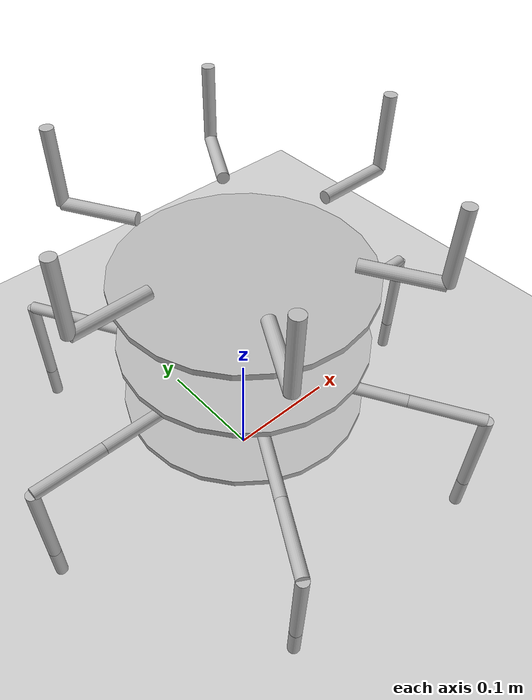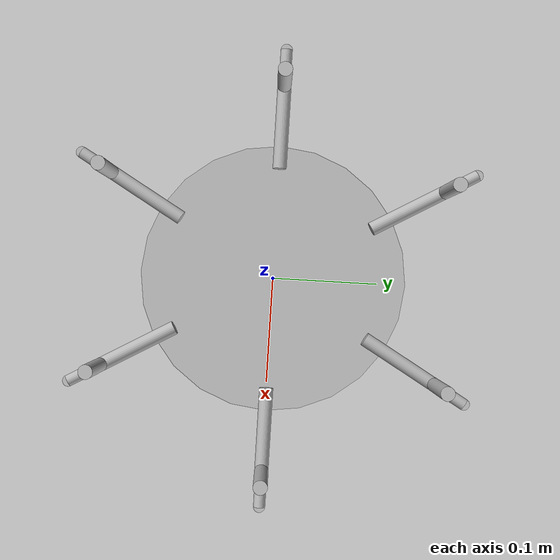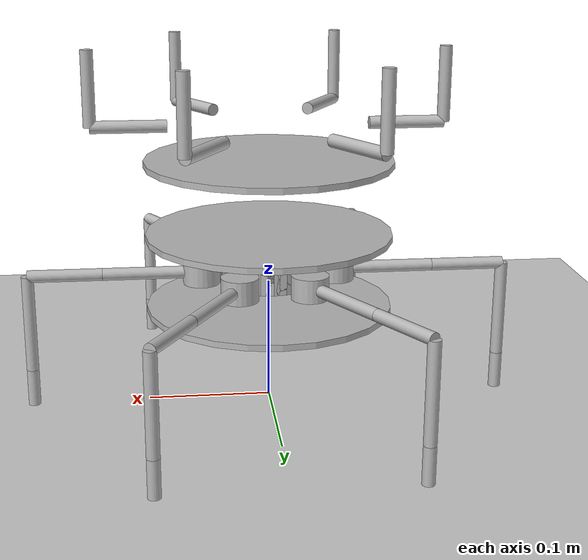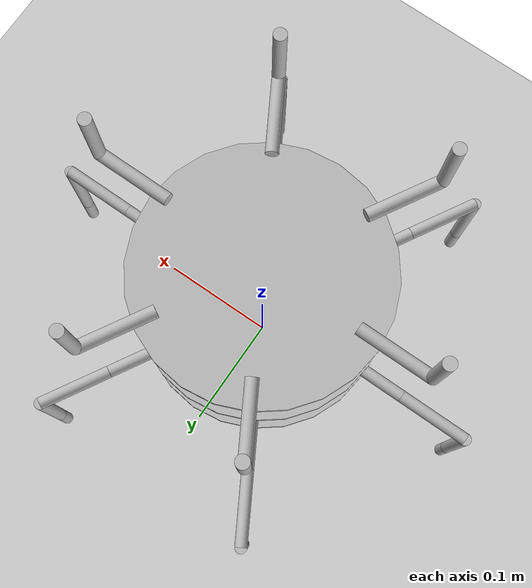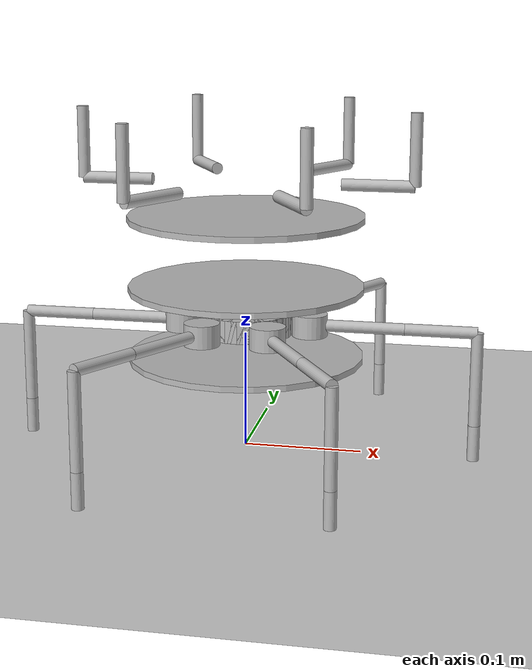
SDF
<sdf version="1.6">
 <world name="default">
  <light name="sun" type="directional">
   <pose>0 0 10 0 -0 0</pose>
   <diffuse>0.8 0.8 0.8 1</diffuse>
   <specular>0.2 0.2 0.2 1</specular>
   <attenuation>
    <range>1000</range>
    <constant>0.9</constant>
    <linear>0.01</linear>
    <quadratic>0.001</quadratic>
   </attenuation>
   <direction>-0.5 0.1 -0.9</direction>
  </light>
  <model name="ground_plane">
   <static>1</static>
   <link name="link">
    <collision name="collision">
     <geometry><plane><normal>0 0 1</normal><size>100 100</size></plane></geometry>
     <surface>
      <contact><collide_bitmask>65535</collide_bitmask></contact>
      <friction><ode><mu>100</mu><mu2>50</mu2></ode></friction>
     </surface>
    </collision>
    <visual name="visual">
     <cast_shadows>0</cast_shadows>
     <geometry><plane><normal>0 0 1</normal><size>100 100</size></plane></geometry>
     <material>
      <script><uri>file://media/materials/scripts/gazebo.material</uri><name>Gazebo/Grey</name></script>
     </material>
    </visual>
   </link>
  </model>
  <gravity>0 0 -9.8</gravity>
  <magnetic_field>6e-06 2.3e-05 -4.2e-05</magnetic_field>
  <atmosphere type="adiabatic"/>
  <physics name="default_physics" default="0" type="ode">
   <max_step_size>0.001</max_step_size>
   <real_time_factor>1</real_time_factor>
   <real_time_update_rate>1000</real_time_update_rate>
  </physics>
  <scene><ambient>0.4 0.4 0.4 1</ambient><background>0.7 0.7 0.7 1</background><shadows>1</shadows></scene>
  <audio><device>default</device></audio>
  <spherical_coordinates>
   <surface_model>EARTH_WGS84</surface_model>
   <latitude_deg>0</latitude_deg>
   <longitude_deg>0</longitude_deg>
   <elevation>0</elevation>
   <heading_deg>0</heading_deg>
  </spherical_coordinates>
  <model name="shell_robot_model">
   <link name="map">
    <inertial>
     <pose>-0 -0 0.121429 0 -0 0</pose>
     <mass>12.6</mass>
     <inertia>
      <ixx>0.208469</ixx>
      <ixy>0.0299993</ixy>
      <ixz>0.0299995</ixz>
      <iyy>0.208467</iyy>
      <iyz>0.0299981</iyz>
      <izz>0.200814</izz>
     </inertia>
    </inertial>
    <collision name="map_fixed_joint_lump__base_link_collision">
     <pose>0 0 0.14 0 -0 0</pose>
     <geometry><cylinder><length>0.005</length><radius>0.1</radius></cylinder></geometry>
    </collision>
    <collision name="map_fixed_joint_lump__bottom_chassis_collision_1">
     <pose>0 0 0.08 0 -0 0</pose>
     <geometry><cylinder><length>0.005</length><radius>0.1</radius></cylinder></geometry>
    </collision>
    <collision name="map_fixed_joint_lump__leg_B_1_1_collision_2">
     <pose>0.0275 0.047631 0.11 0 -0 1.04719</pose>
     <geometry><cylinder><length>0.0038</length><radius>0.003</radius></cylinder></geometry>
    </collision>
    <collision name="map_fixed_joint_lump__leg_B_2_1_collision_3">
     <pose>-0.027499 0.047632 0.11 0 -0 2.09438</pose>
     <geometry><cylinder><length>0.0038</length><radius>0.003</radius></cylinder></geometry>
    </collision>
    <collision name="map_fixed_joint_lump__leg_B_3_1_collision_4">
     <pose>-0.055 1e-06 0.11 0 -0 3.14157</pose>
     <geometry><cylinder><length>0.0038</length><radius>0.003</radius></cylinder></geometry>
    </collision>
    <collision name="map_fixed_joint_lump__leg_B_4_1_collision_5">
     <pose>-0.027501 -0.047631 0.11 0 -0 -2.09443</pose>
     <geometry><cylinder><length>0.0038</length><radius>0.003</radius></cylinder></geometry>
    </collision>
    <collision name="map_fixed_joint_lump__leg_B_5_1_collision_6">
     <pose>0.027498 -0.047632 0.11 0 -0 -1.04724</pose>
     <geometry><cylinder><length>0.0038</length><radius>0.003</radius></cylinder></geometry>
    </collision>
    <collision name="map_fixed_joint_lump__leg_B_6_1_collision_7">
     <pose>0.055 -2e-06 0.11 0 -0 -4.5e-05</pose>
     <geometry><cylinder><length>0.0038</length><radius>0.003</radius></cylinder></geometry>
    </collision>
    <collision name="map_fixed_joint_lump__upper_chassis_collision_8">
     <pose>0 0 0.2 0 -0 0</pose>
     <geometry><cylinder><length>0.005</length><radius>0.1</radius></cylinder></geometry>
    </collision>
    <visual name="map_fixed_joint_lump__base_link_visual">
     <pose>0 0 0.14 0 -0 0</pose>
     <geometry><cylinder><length>0.005</length><radius>0.1</radius></cylinder></geometry>
     <material><script><uri>__default__</uri><name>__default__</name></script></material>
    </visual>
    <visual name="map_fixed_joint_lump__bottom_chassis_visual_1">
     <pose>0 0 0.08 0 -0 0</pose>
     <geometry><cylinder><length>0.005</length><radius>0.1</radius></cylinder></geometry>
     <material><script><uri>__default__</uri><name>__default__</name></script></material>
    </visual>
    <visual name="map_fixed_joint_lump__folding_fan_link_1_visual_2">
     <pose>0 0 0.11 0 -0 1.04719</pose>
     <geometry><cylinder><length>0.019</length><radius>0.04</radius></cylinder></geometry>
     <material><script><uri>__default__</uri><name>__default__</name></script></material>
    </visual>
    <visual name="map_fixed_joint_lump__leg_B_1_1_visual_3">
     <pose>0.0275 0.047631 0.11 0 -0 1.04719</pose>
     <geometry><cylinder><length>0.019</length><radius>0.015</radius></cylinder></geometry>
     <material><script><uri>__default__</uri><name>__default__</name></script></material>
    </visual>
    <visual name="map_fixed_joint_lump__folding_fan_link_2_visual_4">
     <pose>0 0 0.11 0 -0 2.09438</pose>
     <geometry><cylinder><length>0.019</length><radius>0.04</radius></cylinder></geometry>
     <material><script><uri>__default__</uri><name>__default__</name></script></material>
    </visual>
    <visual name="map_fixed_joint_lump__leg_B_2_1_visual_5">
     <pose>-0.027499 0.047632 0.11 0 -0 2.09438</pose>
     <geometry><cylinder><length>0.019</length><radius>0.015</radius></cylinder></geometry>
     <material><script><uri>__default__</uri><name>__default__</name></script></material>
    </visual>
    <visual name="map_fixed_joint_lump__folding_fan_link_3_visual_6">
     <pose>0 0 0.11 0 -0 3.14157</pose>
     <geometry><cylinder><length>0.019</length><radius>0.04</radius></cylinder></geometry>
     <material><script><uri>__default__</uri><name>__default__</name></script></material>
    </visual>
    <visual name="map_fixed_joint_lump__leg_B_3_1_visual_7">
     <pose>-0.055 1e-06 0.11 0 -0 3.14157</pose>
     <geometry><cylinder><length>0.019</length><radius>0.015</radius></cylinder></geometry>
     <material><script><uri>__default__</uri><name>__default__</name></script></material>
    </visual>
    <visual name="map_fixed_joint_lump__folding_fan_link_4_visual_8">
     <pose>0 0 0.11 0 -0 -2.09443</pose>
     <geometry><cylinder><length>0.019</length><radius>0.04</radius></cylinder></geometry>
     <material><script><uri>__default__</uri><name>__default__</name></script></material>
    </visual>
    <visual name="map_fixed_joint_lump__leg_B_4_1_visual_9">
     <pose>-0.027501 -0.047631 0.11 0 -0 -2.09443</pose>
     <geometry><cylinder><length>0.019</length><radius>0.015</radius></cylinder></geometry>
     <material><script><uri>__default__</uri><name>__default__</name></script></material>
    </visual>
    <visual name="map_fixed_joint_lump__folding_fan_link_5_visual_10">
     <pose>0 0 0.11 0 -0 -1.04724</pose>
     <geometry><cylinder><length>0.019</length><radius>0.04</radius></cylinder></geometry>
     <material><script><uri>__default__</uri><name>__default__</name></script></material>
    </visual>
    <visual name="map_fixed_joint_lump__leg_B_5_1_visual_11">
     <pose>0.027498 -0.047632 0.11 0 -0 -1.04724</pose>
     <geometry><cylinder><length>0.019</length><radius>0.015</radius></cylinder></geometry>
     <material><script><uri>__default__</uri><name>__default__</name></script></material>
    </visual>
    <visual name="map_fixed_joint_lump__folding_fan_link_6_visual_12">
     <pose>0 0 0.11 0 -0 -4.5e-05</pose>
     <geometry><cylinder><length>0.019</length><radius>0.04</radius></cylinder></geometry>
     <material><script><uri>__default__</uri><name>__default__</name></script></material>
    </visual>
    <visual name="map_fixed_joint_lump__leg_B_6_1_visual_13">
     <pose>0.055 -2e-06 0.11 0 -0 -4.5e-05</pose>
     <geometry><cylinder><length>0.019</length><radius>0.015</radius></cylinder></geometry>
     <material><script><uri>__default__</uri><name>__default__</name></script></material>
    </visual>
    <visual name="map_fixed_joint_lump__upper_chassis_visual_14">
     <pose>0 0 0.2 0 -0 0</pose>
     <geometry><cylinder><length>0.005</length><radius>0.1</radius></cylinder></geometry>
     <material><script><uri>__default__</uri><name>__default__</name></script></material>
    </visual>
    <self_collide>1</self_collide>
   </link>
   <link name="leg_B_1_2">
    <pose>0.0275 0.047631 0.11 0 -0 1.04719</pose>
    <inertial>
     <pose>0.04 0 0 3.14159 1.57079 3.14159</pose>
     <mass>0.06</mass>
     <inertia>
      <ixx>0.0004</ixx>
      <ixy>0.01</ixy>
      <ixz>0.01</ixz>
      <iyy>0.01</iyy>
      <iyz>0.01</iyz>
      <izz>0.0004</izz>
     </inertia>
    </inertial>
    <collision name="leg_B_1_2_collision">
     <pose>0.04 0 0 3.14159 1.57079 3.14159</pose>
     <geometry><cylinder><length>0.024</length><radius>0.003</radius></cylinder></geometry>
    </collision>
    <visual name="leg_B_1_2_visual">
     <pose>0.04 0 0 3.14159 1.57079 3.14159</pose>
     <geometry><cylinder><length>0.08</length><radius>0.005</radius></cylinder></geometry>
     <material><script><uri>__default__</uri><name>__default__</name></script></material>
    </visual>
    <self_collide>1</self_collide>
   </link>
   <joint name="q_1_1_1" type="revolute">
    <child>leg_B_1_2</child>
    <parent>map</parent>
    <axis>
     <xyz>0 0 1</xyz>
     <limit><lower>0</lower><upper>3.14159</upper><effort>1.5</effort><velocity>0.04</velocity></limit>
     <dynamics>
      <damping>0.8</damping>
      <friction>0</friction>
      <spring_reference>0</spring_reference>
      <spring_stiffness>0</spring_stiffness>
     </dynamics>
     <use_parent_model_frame>1</use_parent_model_frame>
    </axis>
   </joint>
   <link name="leg_B_1_3">
    <pose>0.067501 0.116913 0.11 0 -0 1.04719</pose>
    <inertial>
     <pose>0.03 0 0 3.14159 1.57079 3.14159</pose>
     <mass>0.06</mass>
     <inertia>
      <ixx>0.0003</ixx>
      <ixy>0.01</ixy>
      <ixz>0.01</ixz>
      <iyy>0.01</iyy>
      <iyz>0.01</iyz>
      <izz>0.0003</izz>
     </inertia>
    </inertial>
    <collision name="leg_B_1_3_collision">
     <pose>0.03 0 0 3.14159 1.57079 3.14159</pose>
     <geometry><cylinder><length>0.036</length><radius>0.003</radius></cylinder></geometry>
    </collision>
    <visual name="leg_B_1_3_visual">
     <pose>0.03 0 0 3.14159 1.57079 3.14159</pose>
     <geometry><cylinder><length>0.06</length><radius>0.005</radius></cylinder></geometry>
     <material><script><uri>__default__</uri><name>__default__</name></script></material>
    </visual>
    <self_collide>1</self_collide>
   </link>
   <joint name="q_1_1_2" type="revolute">
    <child>leg_B_1_3</child>
    <parent>leg_B_1_2</parent>
    <axis>
     <xyz>0 0 1</xyz>
     <limit><lower>-1.57079</lower><upper>1.57079</upper><effort>1.5</effort><velocity>0.04</velocity></limit>
     <dynamics>
      <damping>0.7</damping>
      <friction>0</friction>
      <spring_reference>0</spring_reference>
      <spring_stiffness>0</spring_stiffness>
     </dynamics>
     <use_parent_model_frame>1</use_parent_model_frame>
    </axis>
   </joint>
   <link name="leg_B_1_4">
    <pose>0.097501 0.168874 0.11 3.14159 1.57079 -2.0944</pose>
    <inertial>
     <pose>0.04 0 0 3.14159 -1.57079 3.14159</pose>
     <mass>0.06</mass>
     <inertia>
      <ixx>0.0004</ixx>
      <ixy>0.01</ixy>
      <ixz>0.01</ixz>
      <iyy>0.01</iyy>
      <iyz>0.01</iyz>
      <izz>0.0004</izz>
     </inertia>
    </inertial>
    <collision name="leg_B_1_4_collision">
     <pose>0.04 0 0 3.14159 -1.57079 3.14159</pose>
     <geometry><cylinder><length>0.048</length><radius>0.003</radius></cylinder></geometry>
    </collision>
    <visual name="leg_B_1_4_visual">
     <pose>0.04 0 0 3.14159 -1.57079 3.14159</pose>
     <geometry><cylinder><length>0.08</length><radius>0.005</radius></cylinder></geometry>
     <material><script><uri>__default__</uri><name>__default__</name></script></material>
    </visual>
    <self_collide>1</self_collide>
   </link>
   <joint name="q_1_1_3" type="revolute">
    <child>leg_B_1_4</child>
    <parent>leg_B_1_3</parent>
    <axis>
     <xyz>-0.866022 0.500007 0</xyz>
     <limit><lower>-1.57079</lower><upper>1.57079</upper><effort>1.8</effort><velocity>0.04</velocity></limit>
     <dynamics>
      <damping>0.7</damping>
      <friction>0</friction>
      <spring_reference>0</spring_reference>
      <spring_stiffness>0</spring_stiffness>
     </dynamics>
     <use_parent_model_frame>1</use_parent_model_frame>
    </axis>
   </joint>
   <link name="leg_B_1_5">
    <pose>0.097501 0.168874 0.03 1.5708 1.57079 -2.0944</pose>
    <inertial>
     <pose>0.03 0 0 3.14159 1.57079 3.14159</pose>
     <mass>0.06</mass>
     <inertia>
      <ixx>0.0003</ixx>
      <ixy>0.01</ixy>
      <ixz>0.01</ixz>
      <iyy>0.01</iyy>
      <iyz>0.01</iyz>
      <izz>0.0003</izz>
     </inertia>
    </inertial>
    <collision name="leg_B_1_5_collision">
     <pose>0.03 0 0 3.14159 1.57079 3.14159</pose>
     <geometry><cylinder><length>0.036</length><radius>0.003</radius></cylinder></geometry>
    </collision>
    <visual name="leg_B_1_5_visual">
     <pose>0.03 0 0 3.14159 1.57079 3.14159</pose>
     <geometry><cylinder><length>0.06</length><radius>0.005</radius></cylinder></geometry>
     <material><script><uri>__default__</uri><name>__default__</name></script></material>
    </visual>
    <self_collide>1</self_collide>
   </link>
   <joint name="q_1_1_4" type="revolute">
    <child>leg_B_1_5</child>
    <parent>leg_B_1_4</parent>
    <axis>
     <xyz>-0.866021 0.500008 0</xyz>
     <limit><lower>-1.57079</lower><upper>1.57079</upper><effort>1.8</effort><velocity>0.04</velocity></limit>
     <dynamics>
      <damping>0.7</damping>
      <friction>0</friction>
      <spring_reference>0</spring_reference>
      <spring_stiffness>0</spring_stiffness>
     </dynamics>
     <use_parent_model_frame>1</use_parent_model_frame>
    </axis>
   </joint>
   <link name="leg_B_2_2">
    <pose>-0.027499 0.047632 0.11 0 -0 2.09438</pose>
    <inertial>
     <pose>0.04 0 0 3.14159 1.57079 3.14159</pose>
     <mass>0.06</mass>
     <inertia>
      <ixx>0.0004</ixx>
      <ixy>0.01</ixy>
      <ixz>0.01</ixz>
      <iyy>0.01</iyy>
      <iyz>0.01</iyz>
      <izz>0.0004</izz>
     </inertia>
    </inertial>
    <collision name="leg_B_2_2_collision">
     <pose>0.04 0 0 3.14159 1.57079 3.14159</pose>
     <geometry><cylinder><length>0.024</length><radius>0.003</radius></cylinder></geometry>
    </collision>
    <visual name="leg_B_2_2_visual">
     <pose>0.04 0 0 3.14159 1.57079 3.14159</pose>
     <geometry><cylinder><length>0.08</length><radius>0.005</radius></cylinder></geometry>
     <material><script><uri>__default__</uri><name>__default__</name></script></material>
    </visual>
    <self_collide>1</self_collide>
   </link>
   <joint name="q_1_2_1" type="revolute">
    <child>leg_B_2_2</child>
    <parent>map</parent>
    <axis>
     <xyz>0 0 1</xyz>
     <limit><lower>0</lower><upper>3.14159</upper><effort>1.5</effort><velocity>0.04</velocity></limit>
     <dynamics>
      <damping>0.8</damping>
      <friction>0</friction>
      <spring_reference>0</spring_reference>
      <spring_stiffness>0</spring_stiffness>
     </dynamics>
     <use_parent_model_frame>1</use_parent_model_frame>
    </axis>
   </joint>
   <link name="leg_B_2_3">
    <pose>-0.067498 0.116914 0.11 0 -0 2.09438</pose>
    <inertial>
     <pose>0.03 0 0 3.14159 1.57079 3.14159</pose>
     <mass>0.06</mass>
     <inertia>
      <ixx>0.0003</ixx>
      <ixy>0.01</ixy>
      <ixz>0.01</ixz>
      <iyy>0.01</iyy>
      <iyz>0.01</iyz>
      <izz>0.0003</izz>
     </inertia>
    </inertial>
    <collision name="leg_B_2_3_collision">
     <pose>0.03 0 0 3.14159 1.57079 3.14159</pose>
     <geometry><cylinder><length>0.036</length><radius>0.003</radius></cylinder></geometry>
    </collision>
    <visual name="leg_B_2_3_visual">
     <pose>0.03 0 0 3.14159 1.57079 3.14159</pose>
     <geometry><cylinder><length>0.06</length><radius>0.005</radius></cylinder></geometry>
     <material><script><uri>__default__</uri><name>__default__</name></script></material>
    </visual>
    <self_collide>1</self_collide>
   </link>
   <joint name="q_1_2_2" type="revolute">
    <child>leg_B_2_3</child>
    <parent>leg_B_2_2</parent>
    <axis>
     <xyz>0 0 1</xyz>
     <limit><lower>-1.57079</lower><upper>1.57079</upper><effort>1.5</effort><velocity>0.04</velocity></limit>
     <dynamics>
      <damping>0.7</damping>
      <friction>0</friction>
      <spring_reference>0</spring_reference>
      <spring_stiffness>0</spring_stiffness>
     </dynamics>
     <use_parent_model_frame>1</use_parent_model_frame>
    </axis>
   </joint>
   <link name="leg_B_2_4">
    <pose>-0.097497 0.168876 0.11 3.14159 1.57079 -1.04721</pose>
    <inertial>
     <pose>0.04 0 0 3.14159 -1.57079 3.14159</pose>
     <mass>0.06</mass>
     <inertia>
      <ixx>0.0004</ixx>
      <ixy>0.01</ixy>
      <ixz>0.01</ixz>
      <iyy>0.01</iyy>
      <iyz>0.01</iyz>
      <izz>0.0004</izz>
     </inertia>
    </inertial>
    <collision name="leg_B_2_4_collision">
     <pose>0.04 0 0 3.14159 -1.57079 3.14159</pose>
     <geometry><cylinder><length>0.048</length><radius>0.003</radius></cylinder></geometry>
    </collision>
    <visual name="leg_B_2_4_visual">
     <pose>0.04 0 0 3.14159 -1.57079 3.14159</pose>
     <geometry><cylinder><length>0.08</length><radius>0.005</radius></cylinder></geometry>
     <material><script><uri>__default__</uri><name>__default__</name></script></material>
    </visual>
    <self_collide>1</self_collide>
   </link>
   <joint name="q_1_2_3" type="revolute">
    <child>leg_B_2_4</child>
    <parent>leg_B_2_3</parent>
    <axis>
     <xyz>-0.866033 -0.499987 -0</xyz>
     <limit><lower>-1.57079</lower><upper>1.57079</upper><effort>1.8</effort><velocity>0.04</velocity></limit>
     <dynamics>
      <damping>0.7</damping>
      <friction>0</friction>
      <spring_reference>0</spring_reference>
      <spring_stiffness>0</spring_stiffness>
     </dynamics>
     <use_parent_model_frame>1</use_parent_model_frame>
    </axis>
   </joint>
   <link name="leg_B_2_5">
    <pose>-0.097498 0.168877 0.03 1.57079 1.57079 -1.04721</pose>
    <inertial>
     <pose>0.03 0 0 3.14159 1.57079 3.14159</pose>
     <mass>0.06</mass>
     <inertia>
      <ixx>0.0003</ixx>
      <ixy>0.01</ixy>
      <ixz>0.01</ixz>
      <iyy>0.01</iyy>
      <iyz>0.01</iyz>
      <izz>0.0003</izz>
     </inertia>
    </inertial>
    <collision name="leg_B_2_5_collision">
     <pose>0.03 0 0 3.14159 1.57079 3.14159</pose>
     <geometry><cylinder><length>0.036</length><radius>0.003</radius></cylinder></geometry>
    </collision>
    <visual name="leg_B_2_5_visual">
     <pose>0.03 0 0 3.14159 1.57079 3.14159</pose>
     <geometry><cylinder><length>0.06</length><radius>0.005</radius></cylinder></geometry>
     <material><script><uri>__default__</uri><name>__default__</name></script></material>
    </visual>
    <self_collide>1</self_collide>
   </link>
   <joint name="q_1_2_4" type="revolute">
    <child>leg_B_2_5</child>
    <parent>leg_B_2_4</parent>
    <axis>
     <xyz>-0.866034 -0.499986 0</xyz>
     <limit><lower>-1.57079</lower><upper>1.57079</upper><effort>1.8</effort><velocity>0.04</velocity></limit>
     <dynamics>
      <damping>0.7</damping>
      <friction>0</friction>
      <spring_reference>0</spring_reference>
      <spring_stiffness>0</spring_stiffness>
     </dynamics>
     <use_parent_model_frame>1</use_parent_model_frame>
    </axis>
   </joint>
   <link name="leg_B_3_2">
    <pose>-0.055 1e-06 0.11 0 -0 3.14157</pose>
    <inertial>
     <pose>0.04 0 0 3.14159 1.57079 3.14159</pose>
     <mass>0.06</mass>
     <inertia>
      <ixx>0.0004</ixx>
      <ixy>0.01</ixy>
      <ixz>0.01</ixz>
      <iyy>0.01</iyy>
      <iyz>0.01</iyz>
      <izz>0.0004</izz>
     </inertia>
    </inertial>
    <collision name="leg_B_3_2_collision">
     <pose>0.04 0 0 3.14159 1.57079 3.14159</pose>
     <geometry><cylinder><length>0.024</length><radius>0.003</radius></cylinder></geometry>
    </collision>
    <visual name="leg_B_3_2_visual">
     <pose>0.04 0 0 3.14159 1.57079 3.14159</pose>
     <geometry><cylinder><length>0.08</length><radius>0.005</radius></cylinder></geometry>
     <material><script><uri>__default__</uri><name>__default__</name></script></material>
    </visual>
    <self_collide>1</self_collide>
   </link>
   <joint name="q_1_3_1" type="revolute">
    <child>leg_B_3_2</child>
    <parent>map</parent>
    <axis>
     <xyz>0 0 1</xyz>
     <limit><lower>0</lower><upper>3.14159</upper><effort>1.5</effort><velocity>0.04</velocity></limit>
     <dynamics>
      <damping>0.8</damping>
      <friction>0</friction>
      <spring_reference>0</spring_reference>
      <spring_stiffness>0</spring_stiffness>
     </dynamics>
     <use_parent_model_frame>1</use_parent_model_frame>
    </axis>
   </joint>
   <link name="leg_B_3_3">
    <pose>-0.135 3e-06 0.11 0 -0 3.14157</pose>
    <inertial>
     <pose>0.03 0 0 3.14159 1.57079 3.14159</pose>
     <mass>0.06</mass>
     <inertia>
      <ixx>0.0003</ixx>
      <ixy>0.01</ixy>
      <ixz>0.01</ixz>
      <iyy>0.01</iyy>
      <iyz>0.01</iyz>
      <izz>0.0003</izz>
     </inertia>
    </inertial>
    <collision name="leg_B_3_3_collision">
     <pose>0.03 0 0 3.14159 1.57079 3.14159</pose>
     <geometry><cylinder><length>0.036</length><radius>0.003</radius></cylinder></geometry>
    </collision>
    <visual name="leg_B_3_3_visual">
     <pose>0.03 0 0 3.14159 1.57079 3.14159</pose>
     <geometry><cylinder><length>0.06</length><radius>0.005</radius></cylinder></geometry>
     <material><script><uri>__default__</uri><name>__default__</name></script></material>
    </visual>
    <self_collide>1</self_collide>
   </link>
   <joint name="q_1_3_2" type="revolute">
    <child>leg_B_3_3</child>
    <parent>leg_B_3_2</parent>
    <axis>
     <xyz>0 0 1</xyz>
     <limit><lower>-1.57079</lower><upper>1.57079</upper><effort>1.5</effort><velocity>0.04</velocity></limit>
     <dynamics>
      <damping>0.7</damping>
      <friction>0</friction>
      <spring_reference>0</spring_reference>
      <spring_stiffness>0</spring_stiffness>
     </dynamics>
     <use_parent_model_frame>1</use_parent_model_frame>
    </axis>
   </joint>
   <link name="leg_B_3_4">
    <pose>-0.195 4e-06 0.11 -3.14159 1.57079 -2.3e-05</pose>
    <inertial>
     <pose>0.04 0 0 3.14159 -1.57079 3.14159</pose>
     <mass>0.06</mass>
     <inertia>
      <ixx>0.0004</ixx>
      <ixy>0.01</ixy>
      <ixz>0.01</ixz>
      <iyy>0.01</iyy>
      <iyz>0.01</iyz>
      <izz>0.0004</izz>
     </inertia>
    </inertial>
    <collision name="leg_B_3_4_collision">
     <pose>0.04 0 0 3.14159 -1.57079 3.14159</pose>
     <geometry><cylinder><length>0.048</length><radius>0.003</radius></cylinder></geometry>
    </collision>
    <visual name="leg_B_3_4_visual">
     <pose>0.04 0 0 3.14159 -1.57079 3.14159</pose>
     <geometry><cylinder><length>0.08</length><radius>0.005</radius></cylinder></geometry>
     <material><script><uri>__default__</uri><name>__default__</name></script></material>
    </visual>
    <self_collide>1</self_collide>
   </link>
   <joint name="q_1_3_3" type="revolute">
    <child>leg_B_3_4</child>
    <parent>leg_B_3_3</parent>
    <axis>
     <xyz>-2.3e-05 -1 0</xyz>
     <limit><lower>-1.57079</lower><upper>1.57079</upper><effort>1.8</effort><velocity>0.04</velocity></limit>
     <dynamics>
      <damping>0.7</damping>
      <friction>0</friction>
      <spring_reference>0</spring_reference>
      <spring_stiffness>0</spring_stiffness>
     </dynamics>
     <use_parent_model_frame>1</use_parent_model_frame>
    </axis>
   </joint>
   <link name="leg_B_3_5">
    <pose>-0.195 4e-06 0.03 1.57079 1.57079 -2.3e-05</pose>
    <inertial>
     <pose>0.03 0 0 3.14159 1.57079 3.14159</pose>
     <mass>0.06</mass>
     <inertia>
      <ixx>0.0003</ixx>
      <ixy>0.01</ixy>
      <ixz>0.01</ixz>
      <iyy>0.01</iyy>
      <iyz>0.01</iyz>
      <izz>0.0003</izz>
     </inertia>
    </inertial>
    <collision name="leg_B_3_5_collision">
     <pose>0.03 0 0 3.14159 1.57079 3.14159</pose>
     <geometry><cylinder><length>0.036</length><radius>0.003</radius></cylinder></geometry>
    </collision>
    <visual name="leg_B_3_5_visual">
     <pose>0.03 0 0 3.14159 1.57079 3.14159</pose>
     <geometry><cylinder><length>0.06</length><radius>0.005</radius></cylinder></geometry>
     <material><script><uri>__default__</uri><name>__default__</name></script></material>
    </visual>
    <self_collide>1</self_collide>
   </link>
   <joint name="q_1_3_4" type="revolute">
    <child>leg_B_3_5</child>
    <parent>leg_B_3_4</parent>
    <axis>
     <xyz>-2.4e-05 -1 0</xyz>
     <limit><lower>-1.57079</lower><upper>1.57079</upper><effort>1.8</effort><velocity>0.04</velocity></limit>
     <dynamics>
      <damping>0.7</damping>
      <friction>0</friction>
      <spring_reference>0</spring_reference>
      <spring_stiffness>0</spring_stiffness>
     </dynamics>
     <use_parent_model_frame>1</use_parent_model_frame>
    </axis>
   </joint>
   <link name="leg_B_4_2">
    <pose>-0.027501 -0.047631 0.11 0 -0 -2.09443</pose>
    <inertial>
     <pose>0.04 0 0 3.14159 1.57079 3.14159</pose>
     <mass>0.06</mass>
     <inertia>
      <ixx>0.0004</ixx>
      <ixy>0.01</ixy>
      <ixz>0.01</ixz>
      <iyy>0.01</iyy>
      <iyz>0.01</iyz>
      <izz>0.0004</izz>
     </inertia>
    </inertial>
    <collision name="leg_B_4_2_collision">
     <pose>0.04 0 0 3.14159 1.57079 3.14159</pose>
     <geometry><cylinder><length>0.024</length><radius>0.003</radius></cylinder></geometry>
    </collision>
    <visual name="leg_B_4_2_visual">
     <pose>0.04 0 0 3.14159 1.57079 3.14159</pose>
     <geometry><cylinder><length>0.08</length><radius>0.005</radius></cylinder></geometry>
     <material><script><uri>__default__</uri><name>__default__</name></script></material>
    </visual>
    <self_collide>1</self_collide>
   </link>
   <joint name="q_1_4_1" type="revolute">
    <child>leg_B_4_2</child>
    <parent>map</parent>
    <axis>
     <xyz>0 0 1</xyz>
     <limit><lower>0</lower><upper>3.14159</upper><effort>1.5</effort><velocity>0.04</velocity></limit>
     <dynamics>
      <damping>0.8</damping>
      <friction>0</friction>
      <spring_reference>0</spring_reference>
      <spring_stiffness>0</spring_stiffness>
     </dynamics>
     <use_parent_model_frame>1</use_parent_model_frame>
    </axis>
   </joint>
   <link name="leg_B_4_3">
    <pose>-0.067504 -0.116911 0.11 0 -0 -2.09443</pose>
    <inertial>
     <pose>0.03 0 0 3.14159 1.57079 3.14159</pose>
     <mass>0.06</mass>
     <inertia>
      <ixx>0.0003</ixx>
      <ixy>0.01</ixy>
      <ixz>0.01</ixz>
      <iyy>0.01</iyy>
      <iyz>0.01</iyz>
      <izz>0.0003</izz>
     </inertia>
    </inertial>
    <collision name="leg_B_4_3_collision">
     <pose>0.03 0 0 3.14159 1.57079 3.14159</pose>
     <geometry><cylinder><length>0.036</length><radius>0.003</radius></cylinder></geometry>
    </collision>
    <visual name="leg_B_4_3_visual">
     <pose>0.03 0 0 3.14159 1.57079 3.14159</pose>
     <geometry><cylinder><length>0.06</length><radius>0.005</radius></cylinder></geometry>
     <material><script><uri>__default__</uri><name>__default__</name></script></material>
    </visual>
    <self_collide>1</self_collide>
   </link>
   <joint name="q_1_4_2" type="revolute">
    <child>leg_B_4_3</child>
    <parent>leg_B_4_2</parent>
    <axis>
     <xyz>0 0 1</xyz>
     <limit><lower>-1.57079</lower><upper>1.57079</upper><effort>1.5</effort><velocity>0.04</velocity></limit>
     <dynamics>
      <damping>0.7</damping>
      <friction>0</friction>
      <spring_reference>0</spring_reference>
      <spring_stiffness>0</spring_stiffness>
     </dynamics>
     <use_parent_model_frame>1</use_parent_model_frame>
    </axis>
   </joint>
   <link name="leg_B_4_4">
    <pose>-0.097505 -0.168872 0.11 0 1.57079 -2.09443</pose>
    <inertial>
     <pose>0.04 0 0 3.14159 -1.57079 3.14159</pose>
     <mass>0.06</mass>
     <inertia>
      <ixx>0.0004</ixx>
      <ixy>0.01</ixy>
      <ixz>0.01</ixz>
      <iyy>0.01</iyy>
      <iyz>0.01</iyz>
      <izz>0.0004</izz>
     </inertia>
    </inertial>
    <collision name="leg_B_4_4_collision">
     <pose>0.04 0 0 3.14159 -1.57079 3.14159</pose>
     <geometry><cylinder><length>0.048</length><radius>0.003</radius></cylinder></geometry>
    </collision>
    <visual name="leg_B_4_4_visual">
     <pose>0.04 0 0 3.14159 -1.57079 3.14159</pose>
     <geometry><cylinder><length>0.08</length><radius>0.005</radius></cylinder></geometry>
     <material><script><uri>__default__</uri><name>__default__</name></script></material>
    </visual>
    <self_collide>1</self_collide>
   </link>
   <joint name="q_1_4_3" type="revolute">
    <child>leg_B_4_4</child>
    <parent>leg_B_4_3</parent>
    <axis>
     <xyz>0.86601 -0.500026 0</xyz>
     <limit><lower>-1.57079</lower><upper>1.57079</upper><effort>1.8</effort><velocity>0.04</velocity></limit>
     <dynamics>
      <damping>0.7</damping>
      <friction>0</friction>
      <spring_reference>0</spring_reference>
      <spring_stiffness>0</spring_stiffness>
     </dynamics>
     <use_parent_model_frame>1</use_parent_model_frame>
    </axis>
   </joint>
   <link name="leg_B_4_5">
    <pose>-0.097505 -0.168872 0.03 1.5708 1.57079 1.04716</pose>
    <inertial>
     <pose>0.03 0 0 3.14159 1.57079 3.14159</pose>
     <mass>0.06</mass>
     <inertia>
      <ixx>0.0003</ixx>
      <ixy>0.01</ixy>
      <ixz>0.01</ixz>
      <iyy>0.01</iyy>
      <iyz>0.01</iyz>
      <izz>0.0003</izz>
     </inertia>
    </inertial>
    <collision name="leg_B_4_5_collision">
     <pose>0.03 0 0 3.14159 1.57079 3.14159</pose>
     <geometry><cylinder><length>0.036</length><radius>0.003</radius></cylinder></geometry>
    </collision>
    <visual name="leg_B_4_5_visual">
     <pose>0.03 0 0 3.14159 1.57079 3.14159</pose>
     <geometry><cylinder><length>0.06</length><radius>0.005</radius></cylinder></geometry>
     <material><script><uri>__default__</uri><name>__default__</name></script></material>
    </visual>
    <self_collide>1</self_collide>
   </link>
   <joint name="q_1_4_4" type="revolute">
    <child>leg_B_4_5</child>
    <parent>leg_B_4_4</parent>
    <axis>
     <xyz>0.86601 -0.500027 0</xyz>
     <limit><lower>-1.57079</lower><upper>1.57079</upper><effort>1.8</effort><velocity>0.04</velocity></limit>
     <dynamics>
      <damping>0.7</damping>
      <friction>0</friction>
      <spring_reference>0</spring_reference>
      <spring_stiffness>0</spring_stiffness>
     </dynamics>
     <use_parent_model_frame>1</use_parent_model_frame>
    </axis>
   </joint>
   <link name="leg_B_5_2">
    <pose>0.027498 -0.047632 0.11 0 -0 -1.04724</pose>
    <inertial>
     <pose>0.04 0 0 3.14159 1.57079 3.14159</pose>
     <mass>0.06</mass>
     <inertia>
      <ixx>0.0004</ixx>
      <ixy>0.01</ixy>
      <ixz>0.01</ixz>
      <iyy>0.01</iyy>
      <iyz>0.01</iyz>
      <izz>0.0004</izz>
     </inertia>
    </inertial>
    <collision name="leg_B_5_2_collision">
     <pose>0.04 0 0 3.14159 1.57079 3.14159</pose>
     <geometry><cylinder><length>0.024</length><radius>0.003</radius></cylinder></geometry>
    </collision>
    <visual name="leg_B_5_2_visual">
     <pose>0.04 0 0 3.14159 1.57079 3.14159</pose>
     <geometry><cylinder><length>0.08</length><radius>0.005</radius></cylinder></geometry>
     <material><script><uri>__default__</uri><name>__default__</name></script></material>
    </visual>
    <self_collide>1</self_collide>
   </link>
   <joint name="q_1_5_1" type="revolute">
    <child>leg_B_5_2</child>
    <parent>map</parent>
    <axis>
     <xyz>0 0 1</xyz>
     <limit><lower>0</lower><upper>3.14159</upper><effort>1.5</effort><velocity>0.04</velocity></limit>
     <dynamics>
      <damping>0.8</damping>
      <friction>0</friction>
      <spring_reference>0</spring_reference>
      <spring_stiffness>0</spring_stiffness>
     </dynamics>
     <use_parent_model_frame>1</use_parent_model_frame>
    </axis>
   </joint>
   <link name="leg_B_5_3">
    <pose>0.067496 -0.116916 0.11 0 -0 -1.04724</pose>
    <inertial>
     <pose>0.03 0 0 3.14159 1.57079 3.14159</pose>
     <mass>0.06</mass>
     <inertia>
      <ixx>0.0003</ixx>
      <ixy>0.01</ixy>
      <ixz>0.01</ixz>
      <iyy>0.01</iyy>
      <iyz>0.01</iyz>
      <izz>0.0003</izz>
     </inertia>
    </inertial>
    <collision name="leg_B_5_3_collision">
     <pose>0.03 0 0 3.14159 1.57079 3.14159</pose>
     <geometry><cylinder><length>0.036</length><radius>0.003</radius></cylinder></geometry>
    </collision>
    <visual name="leg_B_5_3_visual">
     <pose>0.03 0 0 3.14159 1.57079 3.14159</pose>
     <geometry><cylinder><length>0.06</length><radius>0.005</radius></cylinder></geometry>
     <material><script><uri>__default__</uri><name>__default__</name></script></material>
    </visual>
    <self_collide>1</self_collide>
   </link>
   <joint name="q_1_5_2" type="revolute">
    <child>leg_B_5_3</child>
    <parent>leg_B_5_2</parent>
    <axis>
     <xyz>0 0 1</xyz>
     <limit><lower>-1.57079</lower><upper>1.57079</upper><effort>1.5</effort><velocity>0.04</velocity></limit>
     <dynamics>
      <damping>0.7</damping>
      <friction>0</friction>
      <spring_reference>0</spring_reference>
      <spring_stiffness>0</spring_stiffness>
     </dynamics>
     <use_parent_model_frame>1</use_parent_model_frame>
    </axis>
   </joint>
   <link name="leg_B_5_4">
    <pose>0.097494 -0.168879 0.11 0 1.57079 -1.04724</pose>
    <inertial>
     <pose>0.04 0 0 3.14159 -1.57079 3.14159</pose>
     <mass>0.06</mass>
     <inertia>
      <ixx>0.0004</ixx>
      <ixy>0.01</ixy>
      <ixz>0.01</ixz>
      <iyy>0.01</iyy>
      <iyz>0.01</iyz>
      <izz>0.0004</izz>
     </inertia>
    </inertial>
    <collision name="leg_B_5_4_collision">
     <pose>0.04 0 0 3.14159 -1.57079 3.14159</pose>
     <geometry><cylinder><length>0.048</length><radius>0.003</radius></cylinder></geometry>
    </collision>
    <visual name="leg_B_5_4_visual">
     <pose>0.04 0 0 3.14159 -1.57079 3.14159</pose>
     <geometry><cylinder><length>0.08</length><radius>0.005</radius></cylinder></geometry>
     <material><script><uri>__default__</uri><name>__default__</name></script></material>
    </visual>
    <self_collide>1</self_collide>
   </link>
   <joint name="q_1_5_3" type="revolute">
    <child>leg_B_5_4</child>
    <parent>leg_B_5_3</parent>
    <axis>
     <xyz>0.866044 0.499967 0</xyz>
     <limit><lower>-1.57079</lower><upper>1.57079</upper><effort>1.8</effort><velocity>0.04</velocity></limit>
     <dynamics>
      <damping>0.7</damping>
      <friction>0</friction>
      <spring_reference>0</spring_reference>
      <spring_stiffness>0</spring_stiffness>
     </dynamics>
     <use_parent_model_frame>1</use_parent_model_frame>
    </axis>
   </joint>
   <link name="leg_B_5_5">
    <pose>0.097494 -0.168879 0.03 -1.57079 1.57079 -1.04724</pose>
    <inertial>
     <pose>0.03 0 0 3.14159 1.57079 3.14159</pose>
     <mass>0.06</mass>
     <inertia>
      <ixx>0.0003</ixx>
      <ixy>0.01</ixy>
      <ixz>0.01</ixz>
      <iyy>0.01</iyy>
      <iyz>0.01</iyz>
      <izz>0.0003</izz>
     </inertia>
    </inertial>
    <collision name="leg_B_5_5_collision">
     <pose>0.03 0 0 3.14159 1.57079 3.14159</pose>
     <geometry><cylinder><length>0.036</length><radius>0.003</radius></cylinder></geometry>
    </collision>
    <visual name="leg_B_5_5_visual">
     <pose>0.03 0 0 3.14159 1.57079 3.14159</pose>
     <geometry><cylinder><length>0.06</length><radius>0.005</radius></cylinder></geometry>
     <material><script><uri>__default__</uri><name>__default__</name></script></material>
    </visual>
    <self_collide>1</self_collide>
   </link>
   <joint name="q_1_5_4" type="revolute">
    <child>leg_B_5_5</child>
    <parent>leg_B_5_4</parent>
    <axis>
     <xyz>0.866045 0.499966 0</xyz>
     <limit><lower>-1.57079</lower><upper>1.57079</upper><effort>1.8</effort><velocity>0.04</velocity></limit>
     <dynamics>
      <damping>0.7</damping>
      <friction>0</friction>
      <spring_reference>0</spring_reference>
      <spring_stiffness>0</spring_stiffness>
     </dynamics>
     <use_parent_model_frame>1</use_parent_model_frame>
    </axis>
   </joint>
   <link name="leg_B_6_2">
    <pose>0.055 -2e-06 0.11 0 -0 -4.5e-05</pose>
    <inertial>
     <pose>0.04 0 0 3.14159 1.57079 3.14159</pose>
     <mass>0.06</mass>
     <inertia>
      <ixx>0.0004</ixx>
      <ixy>0.01</ixy>
      <ixz>0.01</ixz>
      <iyy>0.01</iyy>
      <iyz>0.01</iyz>
      <izz>0.0004</izz>
     </inertia>
    </inertial>
    <collision name="leg_B_6_2_collision">
     <pose>0.04 0 0 3.14159 1.57079 3.14159</pose>
     <geometry><cylinder><length>0.024</length><radius>0.003</radius></cylinder></geometry>
    </collision>
    <visual name="leg_B_6_2_visual">
     <pose>0.04 0 0 3.14159 1.57079 3.14159</pose>
     <geometry><cylinder><length>0.08</length><radius>0.005</radius></cylinder></geometry>
     <material><script><uri>__default__</uri><name>__default__</name></script></material>
    </visual>
    <self_collide>1</self_collide>
   </link>
   <joint name="q_1_6_1" type="revolute">
    <child>leg_B_6_2</child>
    <parent>map</parent>
    <axis>
     <xyz>0 0 1</xyz>
     <limit><lower>0</lower><upper>3.14159</upper><effort>1.5</effort><velocity>0.04</velocity></limit>
     <dynamics>
      <damping>0.8</damping>
      <friction>0</friction>
      <spring_reference>0</spring_reference>
      <spring_stiffness>0</spring_stiffness>
     </dynamics>
     <use_parent_model_frame>1</use_parent_model_frame>
    </axis>
   </joint>
   <link name="leg_B_6_3">
    <pose>0.135 -6e-06 0.11 0 -0 -4.5e-05</pose>
    <inertial>
     <pose>0.03 0 0 3.14159 1.57079 3.14159</pose>
     <mass>0.06</mass>
     <inertia>
      <ixx>0.0003</ixx>
      <ixy>0.01</ixy>
      <ixz>0.01</ixz>
      <iyy>0.01</iyy>
      <iyz>0.01</iyz>
      <izz>0.0003</izz>
     </inertia>
    </inertial>
    <collision name="leg_B_6_3_collision">
     <pose>0.03 0 0 3.14159 1.57079 3.14159</pose>
     <geometry><cylinder><length>0.036</length><radius>0.003</radius></cylinder></geometry>
    </collision>
    <visual name="leg_B_6_3_visual">
     <pose>0.03 0 0 3.14159 1.57079 3.14159</pose>
     <geometry><cylinder><length>0.06</length><radius>0.005</radius></cylinder></geometry>
     <material><script><uri>__default__</uri><name>__default__</name></script></material>
    </visual>
    <self_collide>1</self_collide>
   </link>
   <joint name="q_1_6_2" type="revolute">
    <child>leg_B_6_3</child>
    <parent>leg_B_6_2</parent>
    <axis>
     <xyz>0 0 1</xyz>
     <limit><lower>-1.57079</lower><upper>1.57079</upper><effort>1.5</effort><velocity>0.04</velocity></limit>
     <dynamics>
      <damping>0.7</damping>
      <friction>0</friction>
      <spring_reference>0</spring_reference>
      <spring_stiffness>0</spring_stiffness>
     </dynamics>
     <use_parent_model_frame>1</use_parent_model_frame>
    </axis>
   </joint>
   <link name="leg_B_6_4">
    <pose>0.195 -9e-06 0.11 -3.14159 1.57079 3.14155</pose>
    <inertial>
     <pose>0.04 0 0 3.14159 -1.57079 3.14159</pose>
     <mass>0.06</mass>
     <inertia>
      <ixx>0.0004</ixx>
      <ixy>0.01</ixy>
      <ixz>0.01</ixz>
      <iyy>0.01</iyy>
      <iyz>0.01</iyz>
      <izz>0.0004</izz>
     </inertia>
    </inertial>
    <collision name="leg_B_6_4_collision">
     <pose>0.04 0 0 3.14159 -1.57079 3.14159</pose>
     <geometry><cylinder><length>0.048</length><radius>0.003</radius></cylinder></geometry>
    </collision>
    <visual name="leg_B_6_4_visual">
     <pose>0.04 0 0 3.14159 -1.57079 3.14159</pose>
     <geometry><cylinder><length>0.08</length><radius>0.005</radius></cylinder></geometry>
     <material><script><uri>__default__</uri><name>__default__</name></script></material>
    </visual>
    <self_collide>1</self_collide>
   </link>
   <joint name="q_1_6_3" type="revolute">
    <child>leg_B_6_4</child>
    <parent>leg_B_6_3</parent>
    <axis>
     <xyz>4.5e-05 1 0</xyz>
     <limit><lower>-1.57079</lower><upper>1.57079</upper><effort>1.8</effort><velocity>0.04</velocity></limit>
     <dynamics>
      <damping>0.7</damping>
      <friction>0</friction>
      <spring_reference>0</spring_reference>
      <spring_stiffness>0</spring_stiffness>
     </dynamics>
     <use_parent_model_frame>1</use_parent_model_frame>
    </axis>
   </joint>
   <link name="leg_B_6_5">
    <pose>0.195 -9e-06 0.03 1.57079 1.57079 3.14155</pose>
    <inertial>
     <pose>0.03 0 0 3.14159 1.57079 3.14159</pose>
     <mass>0.06</mass>
     <inertia>
      <ixx>0.0003</ixx>
      <ixy>0.01</ixy>
      <ixz>0.01</ixz>
      <iyy>0.01</iyy>
      <iyz>0.01</iyz>
      <izz>0.0003</izz>
     </inertia>
    </inertial>
    <collision name="leg_B_6_5_collision">
     <pose>0.03 0 0 3.14159 1.57079 3.14159</pose>
     <geometry><cylinder><length>0.036</length><radius>0.003</radius></cylinder></geometry>
    </collision>
    <visual name="leg_B_6_5_visual">
     <pose>0.03 0 0 3.14159 1.57079 3.14159</pose>
     <geometry><cylinder><length>0.06</length><radius>0.005</radius></cylinder></geometry>
     <material><script><uri>__default__</uri><name>__default__</name></script></material>
    </visual>
    <self_collide>1</self_collide>
   </link>
   <joint name="q_1_6_4" type="revolute">
    <child>leg_B_6_5</child>
    <parent>leg_B_6_4</parent>
    <axis>
     <xyz>4.7e-05 1 0</xyz>
     <limit><lower>-1.57079</lower><upper>1.57079</upper><effort>1.8</effort><velocity>0.04</velocity></limit>
     <dynamics>
      <damping>0.7</damping>
      <friction>0</friction>
      <spring_reference>0</spring_reference>
      <spring_stiffness>0</spring_stiffness>
     </dynamics>
     <use_parent_model_frame>1</use_parent_model_frame>
    </axis>
   </joint>
   <link name="L_U_1_1">
    <pose>0.040001 0.069282 0.23 0 -0 1.04719</pose>
    <inertial>
     <pose>0.03 0 0 3.14159 1.57079 3.14159</pose>
     <mass>0.06</mass>
     <inertia>
      <ixx>0.0003</ixx>
      <ixy>0.01</ixy>
      <ixz>0.01</ixz>
      <iyy>0.01</iyy>
      <iyz>0.01</iyz>
      <izz>0.0003</izz>
     </inertia>
    </inertial>
    <collision name="L_U_1_1_collision">
     <pose>0.03 0 0 3.14159 1.57079 3.14159</pose>
     <geometry><cylinder><length>0.036</length><radius>0.003</radius></cylinder></geometry>
    </collision>
    <visual name="L_U_1_1_visual">
     <pose>0.03 0 0 3.14159 1.57079 3.14159</pose>
     <geometry><cylinder><length>0.06</length><radius>0.005</radius></cylinder></geometry>
    </visual>
   </link>
   <joint name="q_2_1_1" type="revolute">
    <child>L_U_1_1</child>
    <parent>map</parent>
    <axis>
     <xyz>-0.866022 0.500007 0</xyz>
     <limit><lower>-1.57079</lower><upper>1.57079</upper><effort>1.5</effort><velocity>0.04</velocity></limit>
     <dynamics>
      <damping>0.8</damping>
      <friction>0</friction>
      <spring_reference>0</spring_reference>
      <spring_stiffness>0</spring_stiffness>
     </dynamics>
     <use_parent_model_frame>1</use_parent_model_frame>
    </axis>
   </joint>
   <link name="L_U_1_2">
    <pose>0.070001 0.121243 0.23 3.14159 -1.57079 -2.0944</pose>
    <inertial>
     <pose>0.03 0 0 3.14159 1.57079 3.14159</pose>
     <mass>0.06</mass>
     <inertia>
      <ixx>0.0003</ixx>
      <ixy>0.01</ixy>
      <ixz>0.01</ixz>
      <iyy>0.01</iyy>
      <iyz>0.01</iyz>
      <izz>0.0003</izz>
     </inertia>
    </inertial>
    <collision name="L_U_1_2_collision">
     <pose>0.03 0 0 3.14159 1.57079 3.14159</pose>
     <geometry><cylinder><length>0.036</length><radius>0.003</radius></cylinder></geometry>
    </collision>
    <visual name="L_U_1_2_visual">
     <pose>0.03 0 0 3.14159 1.57079 3.14159</pose>
     <geometry><cylinder><length>0.06</length><radius>0.005</radius></cylinder></geometry>
    </visual>
   </link>
   <joint name="q_2_1_2" type="revolute">
    <child>L_U_1_2</child>
    <parent>L_U_1_1</parent>
    <axis>
     <xyz>-0.866022 0.500007 0</xyz>
     <limit><lower>-1.57079</lower><upper>1.57079</upper><effort>1.5</effort><velocity>0.04</velocity></limit>
     <dynamics>
      <damping>0.8</damping>
      <friction>0</friction>
      <spring_reference>0</spring_reference>
      <spring_stiffness>0</spring_stiffness>
     </dynamics>
     <use_parent_model_frame>1</use_parent_model_frame>
    </axis>
   </joint>
   <link name="L_U_2_1">
    <pose>-0.039999 0.069283 0.23 0 -0 2.09438</pose>
    <inertial>
     <pose>0.03 0 0 3.14159 1.57079 3.14159</pose>
     <mass>0.06</mass>
     <inertia>
      <ixx>0.0003</ixx>
      <ixy>0.01</ixy>
      <ixz>0.01</ixz>
      <iyy>0.01</iyy>
      <iyz>0.01</iyz>
      <izz>0.0003</izz>
     </inertia>
    </inertial>
    <collision name="L_U_2_1_collision">
     <pose>0.03 0 0 3.14159 1.57079 3.14159</pose>
     <geometry><cylinder><length>0.036</length><radius>0.003</radius></cylinder></geometry>
    </collision>
    <visual name="L_U_2_1_visual">
     <pose>0.03 0 0 3.14159 1.57079 3.14159</pose>
     <geometry><cylinder><length>0.06</length><radius>0.005</radius></cylinder></geometry>
    </visual>
   </link>
   <joint name="q_2_2_1" type="revolute">
    <child>L_U_2_1</child>
    <parent>map</parent>
    <axis>
     <xyz>-0.866033 -0.499987 0</xyz>
     <limit><lower>-1.57079</lower><upper>1.57079</upper><effort>1.5</effort><velocity>0.04</velocity></limit>
     <dynamics>
      <damping>0.8</damping>
      <friction>0</friction>
      <spring_reference>0</spring_reference>
      <spring_stiffness>0</spring_stiffness>
     </dynamics>
     <use_parent_model_frame>1</use_parent_model_frame>
    </axis>
   </joint>
   <link name="L_U_2_2">
    <pose>-0.069998 0.121245 0.23 -3.14159 -1.57079 -1.04721</pose>
    <inertial>
     <pose>0.03 0 0 3.14159 1.57079 3.14159</pose>
     <mass>0.06</mass>
     <inertia>
      <ixx>0.0003</ixx>
      <ixy>0.01</ixy>
      <ixz>0.01</ixz>
      <iyy>0.01</iyy>
      <iyz>0.01</iyz>
      <izz>0.0003</izz>
     </inertia>
    </inertial>
    <collision name="L_U_2_2_collision">
     <pose>0.03 0 0 3.14159 1.57079 3.14159</pose>
     <geometry><cylinder><length>0.036</length><radius>0.003</radius></cylinder></geometry>
    </collision>
    <visual name="L_U_2_2_visual">
     <pose>0.03 0 0 3.14159 1.57079 3.14159</pose>
     <geometry><cylinder><length>0.06</length><radius>0.005</radius></cylinder></geometry>
    </visual>
   </link>
   <joint name="q_2_2_2" type="revolute">
    <child>L_U_2_2</child>
    <parent>L_U_2_1</parent>
    <axis>
     <xyz>-0.866033 -0.499987 0</xyz>
     <limit><lower>-1.57079</lower><upper>1.57079</upper><effort>1.5</effort><velocity>0.04</velocity></limit>
     <dynamics>
      <damping>0.8</damping>
      <friction>0</friction>
      <spring_reference>0</spring_reference>
      <spring_stiffness>0</spring_stiffness>
     </dynamics>
     <use_parent_model_frame>1</use_parent_model_frame>
    </axis>
   </joint>
   <link name="L_U_3_1">
    <pose>-0.08 2e-06 0.23 0 -0 3.14157</pose>
    <inertial>
     <pose>0.03 0 0 3.14159 1.57079 3.14159</pose>
     <mass>0.06</mass>
     <inertia>
      <ixx>0.0003</ixx>
      <ixy>0.01</ixy>
      <ixz>0.01</ixz>
      <iyy>0.01</iyy>
      <iyz>0.01</iyz>
      <izz>0.0003</izz>
     </inertia>
    </inertial>
    <collision name="L_U_3_1_collision">
     <pose>0.03 0 0 3.14159 1.57079 3.14159</pose>
     <geometry><cylinder><length>0.036</length><radius>0.003</radius></cylinder></geometry>
    </collision>
    <visual name="L_U_3_1_visual">
     <pose>0.03 0 0 3.14159 1.57079 3.14159</pose>
     <geometry><cylinder><length>0.06</length><radius>0.005</radius></cylinder></geometry>
    </visual>
   </link>
   <joint name="q_2_3_1" type="revolute">
    <child>L_U_3_1</child>
    <parent>map</parent>
    <axis>
     <xyz>-2.3e-05 -1 0</xyz>
     <limit><lower>-1.57079</lower><upper>1.57079</upper><effort>1.5</effort><velocity>0.04</velocity></limit>
     <dynamics>
      <damping>0.8</damping>
      <friction>0</friction>
      <spring_reference>0</spring_reference>
      <spring_stiffness>0</spring_stiffness>
     </dynamics>
     <use_parent_model_frame>1</use_parent_model_frame>
    </axis>
   </joint>
   <link name="L_U_3_2">
    <pose>-0.14 3e-06 0.23 3.14159 -1.57079 -2.3e-05</pose>
    <inertial>
     <pose>0.03 0 0 3.14159 1.57079 3.14159</pose>
     <mass>0.06</mass>
     <inertia>
      <ixx>0.0003</ixx>
      <ixy>0.01</ixy>
      <ixz>0.01</ixz>
      <iyy>0.01</iyy>
      <iyz>0.01</iyz>
      <izz>0.0003</izz>
     </inertia>
    </inertial>
    <collision name="L_U_3_2_collision">
     <pose>0.03 0 0 3.14159 1.57079 3.14159</pose>
     <geometry><cylinder><length>0.036</length><radius>0.003</radius></cylinder></geometry>
    </collision>
    <visual name="L_U_3_2_visual">
     <pose>0.03 0 0 3.14159 1.57079 3.14159</pose>
     <geometry><cylinder><length>0.06</length><radius>0.005</radius></cylinder></geometry>
    </visual>
   </link>
   <joint name="q_2_3_2" type="revolute">
    <child>L_U_3_2</child>
    <parent>L_U_3_1</parent>
    <axis>
     <xyz>-2.3e-05 -1 0</xyz>
     <limit><lower>-1.57079</lower><upper>1.57079</upper><effort>1.5</effort><velocity>0.04</velocity></limit>
     <dynamics>
      <damping>0.8</damping>
      <friction>0</friction>
      <spring_reference>0</spring_reference>
      <spring_stiffness>0</spring_stiffness>
     </dynamics>
     <use_parent_model_frame>1</use_parent_model_frame>
    </axis>
   </joint>
   <link name="L_U_4_1">
    <pose>-0.040002 -0.069281 0.23 0 -0 -2.09443</pose>
    <inertial>
     <pose>0.03 0 0 3.14159 1.57079 3.14159</pose>
     <mass>0.06</mass>
     <inertia>
      <ixx>0.0003</ixx>
      <ixy>0.01</ixy>
      <ixz>0.01</ixz>
      <iyy>0.01</iyy>
      <iyz>0.01</iyz>
      <izz>0.0003</izz>
     </inertia>
    </inertial>
    <collision name="L_U_4_1_collision">
     <pose>0.03 0 0 3.14159 1.57079 3.14159</pose>
     <geometry><cylinder><length>0.036</length><radius>0.003</radius></cylinder></geometry>
    </collision>
    <visual name="L_U_4_1_visual">
     <pose>0.03 0 0 3.14159 1.57079 3.14159</pose>
     <geometry><cylinder><length>0.06</length><radius>0.005</radius></cylinder></geometry>
    </visual>
   </link>
   <joint name="q_2_4_1" type="revolute">
    <child>L_U_4_1</child>
    <parent>map</parent>
    <axis>
     <xyz>0.86601 -0.500026 0</xyz>
     <limit><lower>-1.57079</lower><upper>1.57079</upper><effort>1.5</effort><velocity>0.04</velocity></limit>
     <dynamics>
      <damping>0.8</damping>
      <friction>0</friction>
      <spring_reference>0</spring_reference>
      <spring_stiffness>0</spring_stiffness>
     </dynamics>
     <use_parent_model_frame>1</use_parent_model_frame>
    </axis>
   </joint>
   <link name="L_U_4_2">
    <pose>-0.070004 -0.121241 0.23 0 -1.57079 -2.09443</pose>
    <inertial>
     <pose>0.03 0 0 3.14159 1.57079 3.14159</pose>
     <mass>0.06</mass>
     <inertia>
      <ixx>0.0003</ixx>
      <ixy>0.01</ixy>
      <ixz>0.01</ixz>
      <iyy>0.01</iyy>
      <iyz>0.01</iyz>
      <izz>0.0003</izz>
     </inertia>
    </inertial>
    <collision name="L_U_4_2_collision">
     <pose>0.03 0 0 3.14159 1.57079 3.14159</pose>
     <geometry><cylinder><length>0.036</length><radius>0.003</radius></cylinder></geometry>
    </collision>
    <visual name="L_U_4_2_visual">
     <pose>0.03 0 0 3.14159 1.57079 3.14159</pose>
     <geometry><cylinder><length>0.06</length><radius>0.005</radius></cylinder></geometry>
    </visual>
   </link>
   <joint name="q_2_4_2" type="revolute">
    <child>L_U_4_2</child>
    <parent>L_U_4_1</parent>
    <axis>
     <xyz>0.86601 -0.500026 -0</xyz>
     <limit><lower>-1.57079</lower><upper>1.57079</upper><effort>1.5</effort><velocity>0.04</velocity></limit>
     <dynamics>
      <damping>0.8</damping>
      <friction>0</friction>
      <spring_reference>0</spring_reference>
      <spring_stiffness>0</spring_stiffness>
     </dynamics>
     <use_parent_model_frame>1</use_parent_model_frame>
    </axis>
   </joint>
   <link name="L_U_5_1">
    <pose>0.039997 -0.069284 0.23 0 -0 -1.04724</pose>
    <inertial>
     <pose>0.03 0 0 3.14159 1.57079 3.14159</pose>
     <mass>0.06</mass>
     <inertia>
      <ixx>0.0003</ixx>
      <ixy>0.01</ixy>
      <ixz>0.01</ixz>
      <iyy>0.01</iyy>
      <iyz>0.01</iyz>
      <izz>0.0003</izz>
     </inertia>
    </inertial>
    <collision name="L_U_5_1_collision">
     <pose>0.03 0 0 3.14159 1.57079 3.14159</pose>
     <geometry><cylinder><length>0.036</length><radius>0.003</radius></cylinder></geometry>
    </collision>
    <visual name="L_U_5_1_visual">
     <pose>0.03 0 0 3.14159 1.57079 3.14159</pose>
     <geometry><cylinder><length>0.06</length><radius>0.005</radius></cylinder></geometry>
    </visual>
   </link>
   <joint name="q_2_5_1" type="revolute">
    <child>L_U_5_1</child>
    <parent>map</parent>
    <axis>
     <xyz>0.866044 0.499967 0</xyz>
     <limit><lower>-1.57079</lower><upper>1.57079</upper><effort>1.5</effort><velocity>0.04</velocity></limit>
     <dynamics>
      <damping>0.8</damping>
      <friction>0</friction>
      <spring_reference>0</spring_reference>
      <spring_stiffness>0</spring_stiffness>
     </dynamics>
     <use_parent_model_frame>1</use_parent_model_frame>
    </axis>
   </joint>
   <link name="L_U_5_2">
    <pose>0.069995 -0.121246 0.23 0 -1.57079 -1.04724</pose>
    <inertial>
     <pose>0.03 0 0 3.14159 1.57079 3.14159</pose>
     <mass>0.06</mass>
     <inertia>
      <ixx>0.0003</ixx>
      <ixy>0.01</ixy>
      <ixz>0.01</ixz>
      <iyy>0.01</iyy>
      <iyz>0.01</iyz>
      <izz>0.0003</izz>
     </inertia>
    </inertial>
    <collision name="L_U_5_2_collision">
     <pose>0.03 0 0 3.14159 1.57079 3.14159</pose>
     <geometry><cylinder><length>0.036</length><radius>0.003</radius></cylinder></geometry>
    </collision>
    <visual name="L_U_5_2_visual">
     <pose>0.03 0 0 3.14159 1.57079 3.14159</pose>
     <geometry><cylinder><length>0.06</length><radius>0.005</radius></cylinder></geometry>
    </visual>
   </link>
   <joint name="q_2_5_2" type="revolute">
    <child>L_U_5_2</child>
    <parent>L_U_5_1</parent>
    <axis>
     <xyz>0.866044 0.499967 -0</xyz>
     <limit><lower>-1.57079</lower><upper>1.57079</upper><effort>1.5</effort><velocity>0.04</velocity></limit>
     <dynamics>
      <damping>0.8</damping>
      <friction>0</friction>
      <spring_reference>0</spring_reference>
      <spring_stiffness>0</spring_stiffness>
     </dynamics>
     <use_parent_model_frame>1</use_parent_model_frame>
    </axis>
   </joint>
   <link name="L_U_6_1">
    <pose>0.08 -4e-06 0.23 0 -0 -4.5e-05</pose>
    <inertial>
     <pose>0.03 0 0 3.14159 1.57079 3.14159</pose>
     <mass>0.06</mass>
     <inertia>
      <ixx>0.0003</ixx>
      <ixy>0.01</ixy>
      <ixz>0.01</ixz>
      <iyy>0.01</iyy>
      <iyz>0.01</iyz>
      <izz>0.0003</izz>
     </inertia>
    </inertial>
    <collision name="L_U_6_1_collision">
     <pose>0.03 0 0 3.14159 1.57079 3.14159</pose>
     <geometry><cylinder><length>0.036</length><radius>0.003</radius></cylinder></geometry>
    </collision>
    <visual name="L_U_6_1_visual">
     <pose>0.03 0 0 3.14159 1.57079 3.14159</pose>
     <geometry><cylinder><length>0.06</length><radius>0.005</radius></cylinder></geometry>
    </visual>
   </link>
   <joint name="q_2_6_1" type="revolute">
    <child>L_U_6_1</child>
    <parent>map</parent>
    <axis>
     <xyz>4.5e-05 1 0</xyz>
     <limit><lower>-1.57079</lower><upper>1.57079</upper><effort>1.5</effort><velocity>0.04</velocity></limit>
     <dynamics>
      <damping>0.8</damping>
      <friction>0</friction>
      <spring_reference>0</spring_reference>
      <spring_stiffness>0</spring_stiffness>
     </dynamics>
     <use_parent_model_frame>1</use_parent_model_frame>
    </axis>
   </joint>
   <link name="L_U_6_2">
    <pose>0.14 -6e-06 0.23 3.14159 -1.57079 3.14155</pose>
    <inertial>
     <pose>0.03 0 0 3.14159 1.57079 3.14159</pose>
     <mass>0.06</mass>
     <inertia>
      <ixx>0.0003</ixx>
      <ixy>0.01</ixy>
      <ixz>0.01</ixz>
      <iyy>0.01</iyy>
      <iyz>0.01</iyz>
      <izz>0.0003</izz>
     </inertia>
    </inertial>
    <collision name="L_U_6_2_collision">
     <pose>0.03 0 0 3.14159 1.57079 3.14159</pose>
     <geometry><cylinder><length>0.036</length><radius>0.003</radius></cylinder></geometry>
    </collision>
    <visual name="L_U_6_2_visual">
     <pose>0.03 0 0 3.14159 1.57079 3.14159</pose>
     <geometry><cylinder><length>0.06</length><radius>0.005</radius></cylinder></geometry>
    </visual>
   </link>
   <joint name="q_2_6_2" type="revolute">
    <child>L_U_6_2</child>
    <parent>L_U_6_1</parent>
    <axis>
     <xyz>4.5e-05 1 -0</xyz>
     <limit><lower>-1.57079</lower><upper>1.57079</upper><effort>1.5</effort><velocity>0.04</velocity></limit>
     <dynamics>
      <damping>0.8</damping>
      <friction>0</friction>
      <spring_reference>0</spring_reference>
      <spring_stiffness>0</spring_stiffness>
     </dynamics>
     <use_parent_model_frame>1</use_parent_model_frame>
    </axis>
   </joint>
   <link name="support_c">
    <pose>0 0 0.14 0 -0 0</pose>
    <inertial>
     <mass>0.001</mass>
     <inertia>
      <ixx>0.001</ixx>
      <ixy>0.001</ixy>
      <ixz>0.001</ixz>
      <iyy>0.001</iyy>
      <iyz>0.001</iyz>
      <izz>0.001</izz>
     </inertia>
    </inertial>
    <collision name="support_c_collision">
     <geometry><cylinder><length>0.001</length><radius>0.001</radius></cylinder></geometry>
    </collision>
    <self_collide>1</self_collide>
   </link>
   <joint name="q_c" type="revolute">
    <child>support_c</child>
    <parent>map</parent>
    <axis>
     <xyz>0 0 1</xyz>
     <limit><lower>0</lower><upper>3.14159</upper><effort>1.5</effort><velocity>0.04</velocity></limit>
     <dynamics>
      <damping>0.8</damping>
      <friction>0</friction>
      <spring_reference>0</spring_reference>
      <spring_stiffness>0</spring_stiffness>
     </dynamics>
     <use_parent_model_frame>1</use_parent_model_frame>
    </axis>
   </joint>
   <static>0</static>
   <plugin name="gazebo_ros_control" filename="libgazebo_ros_control.so">
    <robotNamespace>/shell_robot_model</robotNamespace>
    <robotSimType>gazebo_ros_control/DefaultRobotHWSim</robotSimType>
   </plugin>
  </model>
 </world>
</sdf>
